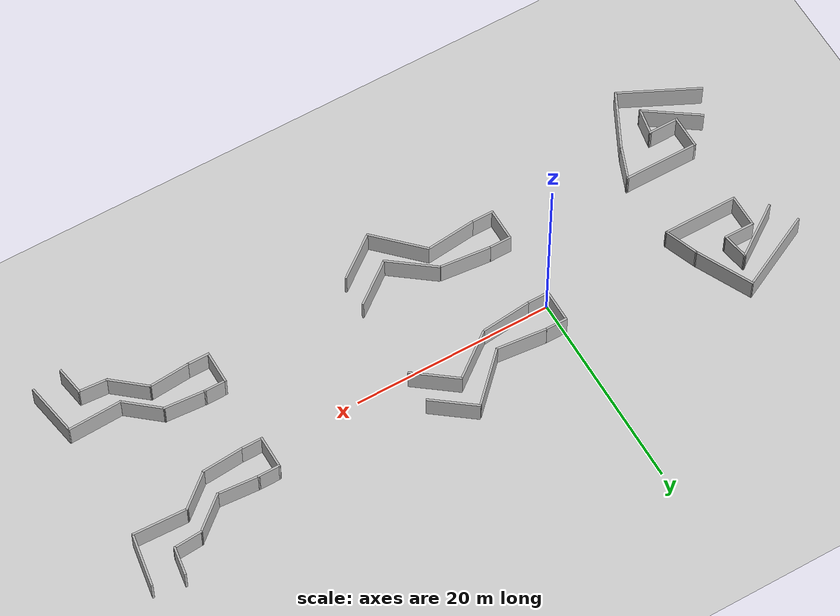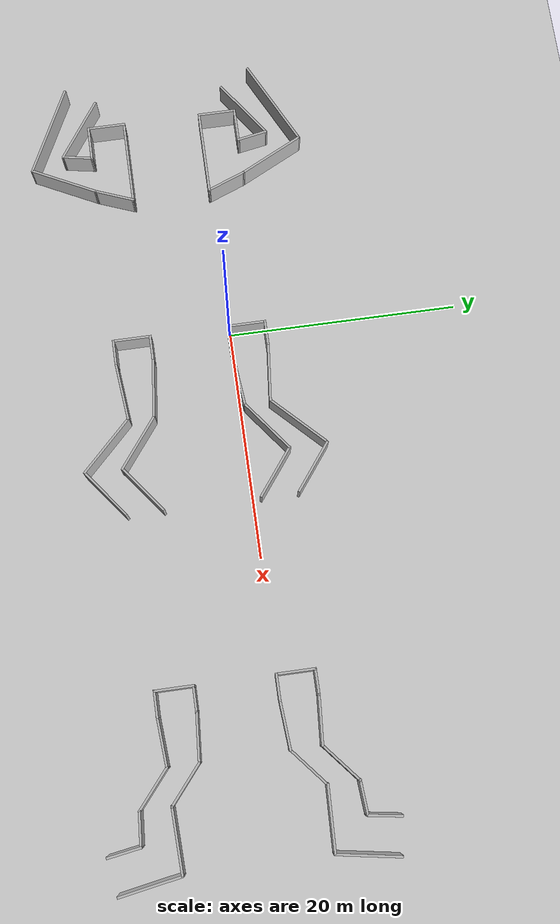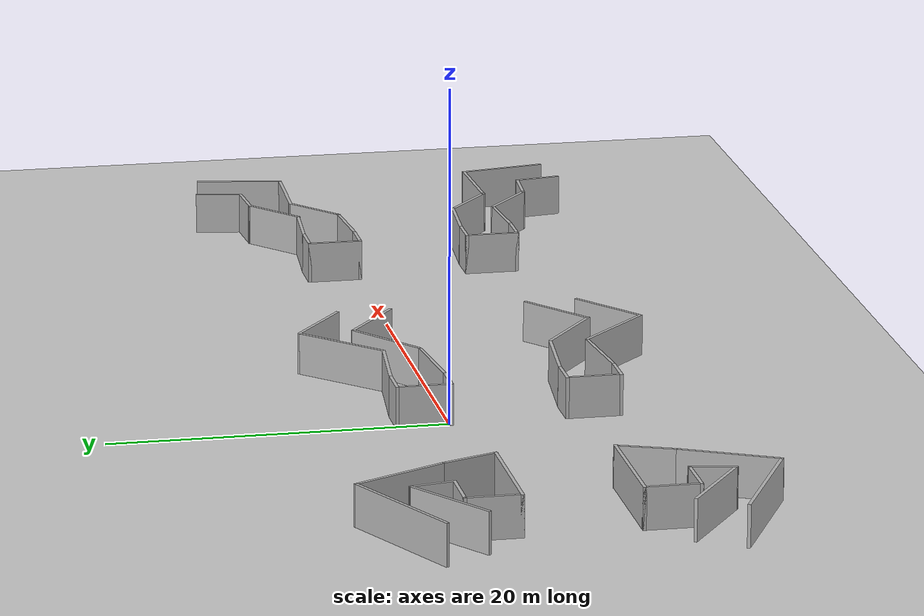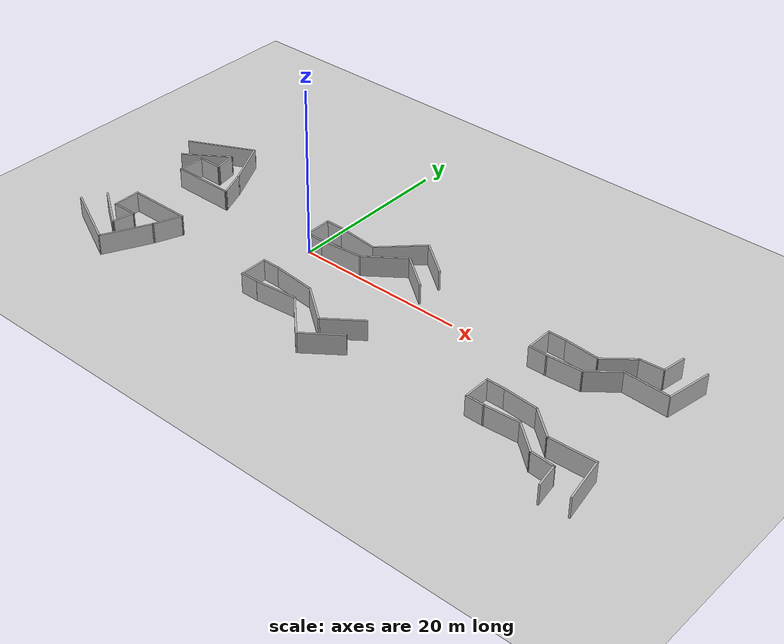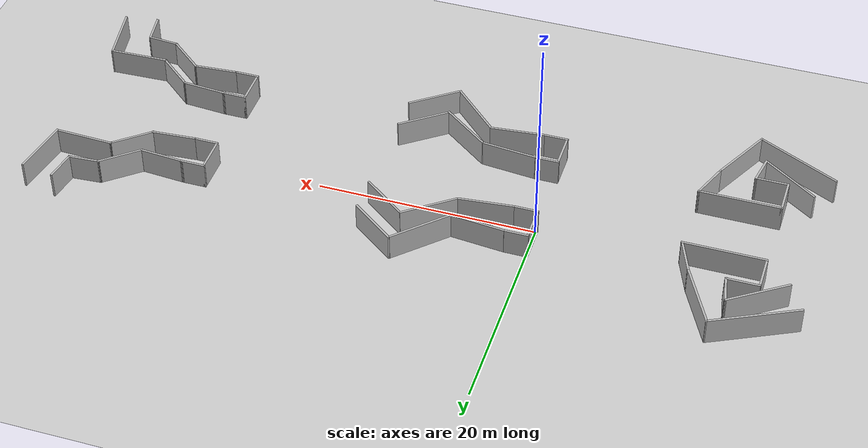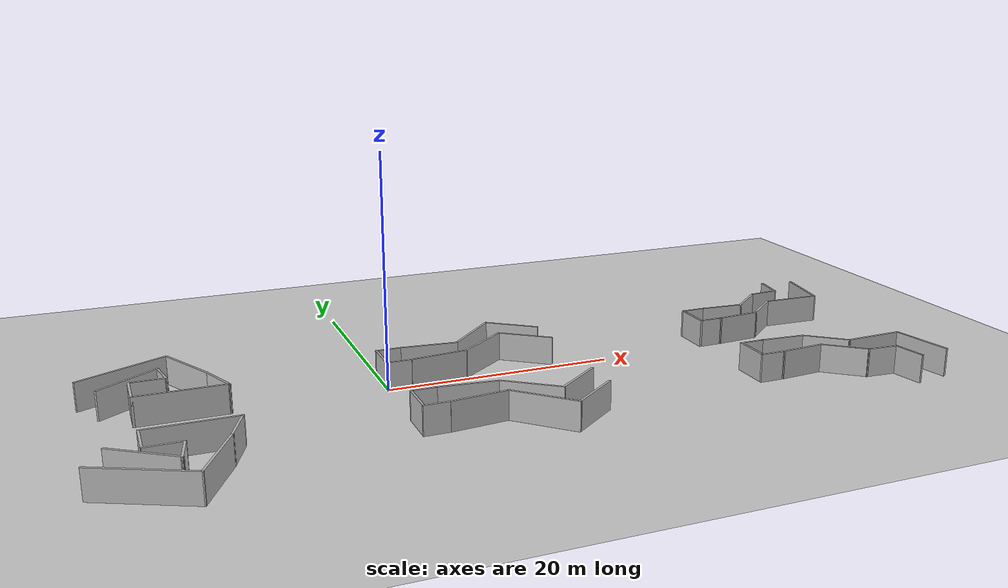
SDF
<?xml version="1.0" ?>
<sdf version="1.4">
	<world name="feedback_experiment_world_0">
		<scene>
			<sky/>
		</scene>
		<include>
			<uri>model://ground_plane</uri>
		</include>
		<include>
			<uri>model://sun</uri>
		</include>
		<model name='World_0'>
			<link name='StartArea_Wall_1'>
				<collision name='StartArea_Wall_1_Collision'>
					<geometry>
						<box>
							<size>2.2 0.2 2.5</size>
						</box>
					</geometry>
					<pose>0 0 1.25 0 0 0</pose>
				</collision>
				<visual name='StartArea_Wall_1_Visual'>
					<pose>0 0 1.25 0 0 0</pose>
					<geometry>
						<box>
						<size>2.2 0.2 2.5</size>
						</box>
					</geometry>
					<material>
						<script>
						<uri>file://media/materials/scripts/kitchen.material</uri>
						<name>Kitchen/Wall</name>
						</script>
					</material>
				</visual>
				<velocity_decay>
					<linear>0</linear>
					<angular>0</angular>
				</velocity_decay>
				<pose>0.9 -0.1 0 0 0 0</pose>
			</link>
			<link name='StartArea_Wall_2'>
				<collision name='StartArea_Wall_2_Collision'>
					<geometry>
						<box>
							<size>2.2 0.2 2.5</size>
						</box>
					</geometry>
					<pose>0 0 1.25 0 0 0</pose>
				</collision>
				<visual name='StartArea_Wall_2_Visual'>
					<pose>0 0 1.25 0 0 0</pose>
					<geometry>
						<box>
							<size>2.2 0.2 2.5</size>
						</box>
					</geometry>
					<material>
						<script>
							<uri>file://media/materials/scripts/kitchen.material</uri>
							<name>Kitchen/Wall</name>
						</script>
					</material>
				</visual>
				<velocity_decay>
					<linear>0</linear>
					<angular>0</angular>
				</velocity_decay>
				<pose>0.9 3.1 0 0 0 0</pose>
			</link>
			<link name='StartArea_Wall_3'>
				<collision name='StartArea_Wall_3_Collision'>
					<geometry>
						<box>
							<size>3 0.2 2.5</size>
						</box>
					</geometry>
					<pose>0 0 1.25 0 0 0</pose>
				</collision>
				<visual name='StartArea_Wall_3_Visual'>
					<pose>0 0 1.25 0 0 0</pose>
					<geometry>
						<box>
							<size>3 0.2 2.5</size>
						</box>
					</geometry>
					<material>
					<script>
						<uri>file://media/materials/scripts/kitchen.material</uri>
						<name>Kitchen/Wall</name>
					</script>
					</material>
				</visual>
				<velocity_decay>
					<linear>0</linear>
					<angular>0</angular>
				</velocity_decay>
				<pose>-0.1 1.5 0 0 0 -1.5708</pose>
			</link>
			<link name='Wall_1'>
				<collision name='Wall_1_Collision'>
					<geometry>
						<box>
							<size>5.025 0.2 2.5</size>
						</box>
					</geometry>
					<pose>0 0 1.25 0 0 0</pose>
				</collision>
				<visual name='Wall_1_Visual'>
					<pose>0 0 1.25 0 0 0</pose>
					<geometry>
						<box>
							<size>5.025 0.2 2.5</size>
						</box>
					</geometry>
					<material>
						<script>
							<uri>file://media/materials/scripts/kitchen.material</uri>
							<name>Kitchen/Wall</name>
						</script>
					</material>
				</visual>
				<velocity_decay>
					<linear>0</linear>
					<angular>0</angular>
				</velocity_decay>
				<pose>4.5 0.15 0 0 0 0.099668652</pose>
			</link>
			<link name='Wall_2'>
				<collision name='Wall_2_Collision'>
					<geometry>
						<box>
							<size>5.025 0.2 2.5</size>
						</box>
					</geometry>
					<pose>0 0 1.25 0 0 0</pose>
				</collision>
				<visual name='Wall_2_Visual'>
					<pose>0 0 1.25 0 0 0</pose>
					<geometry>
						<box>
							<size>5.025 0.2 2.5</size>
						</box>
					</geometry>
					<material>
						<script>
							<uri>file://media/materials/scripts/kitchen.material</uri>
							<name>Kitchen/Wall</name>
						</script>
					</material>
				</visual>
				<velocity_decay>
					<linear>0</linear>
					<angular>0</angular>
				</velocity_decay>
				<pose>4.5 2.85 0 0 0 -0.099668652</pose>
			</link>
			<link name='Wall_3'>
				<collision name='Wall_3_Collision'>
					<geometry>
						<box>
							<size>5.3399 0.2 2.5</size>
						</box>
					</geometry>
					<pose>0 0 1.25 0 0 0</pose>
				</collision>
				<visual name='Wall_3_Visual'>
					<pose>0 0 1.25 0 0 0</pose>
					<geometry>
						<box>
							<size>5.3399 0.2 2.5</size>
						</box>
					</geometry>
					<material>
					<script>
						<uri>file://media/materials/scripts/kitchen.material</uri>
						<name>Kitchen/Wall</name>
					</script>
					</material>
				</visual>
				<velocity_decay>
					<linear>0</linear>
					<angular>0</angular>
				</velocity_decay>
				<pose>9.15 2.04 0 0 0 0.652589</pose>
			</link>
			<link name='Wall_4'>
				<collision name='Wall_4_Collision'>
					<geometry>
						<box>
							<size>6 0.2 2.5</size>
						</box>
					</geometry>
					<pose>0 0 1.25 0 0 0</pose>
				</collision>
				<visual name='Wall_4_Visual'>
					<pose>0 0 1.25 0 0 0</pose>
					<geometry>
						<box>
							<size>6 0.2 2.5</size>
						</box>
					</geometry>
					<material>
					<script>
						<uri>file://media/materials/scripts/kitchen.material</uri>
						<name>Kitchen/Wall</name>
					</script>
					</material>
				</visual>
				<velocity_decay>
					<linear>0</linear>
					<angular>0</angular>
				</velocity_decay>
				<pose>9.05 4.7213 0 0 0 0.785398</pose>
			</link>
			<link name='Wall_5'>
				<collision name='Wall_5_Collision'>
					<geometry>
						<box>
							<size>5 0.2 2.5</size>
						</box>
					</geometry>
					<pose>0 0 1.25 0 0 0</pose>
				</collision>
				<visual name='Wall_5_Visual'>
					<pose>0 0 1.25 0 0 0</pose>
					<geometry>
						<box>
							<size>5 0.2 2.5</size>
						</box>
					</geometry>
					<material>
					<script>
						<uri>file://media/materials/scripts/kitchen.material</uri>
						<name>Kitchen/Wall</name>
					</script>
					</material>
				</visual>
				<velocity_decay>
					<linear>0</linear>
					<angular>0</angular>
				</velocity_decay>
				<pose>13.1577 2.17264 0 0 0 -0.65138</pose>
			</link>
			<link name='Wall_6'>
				<collision name='Wall_6_Collision'>
					<geometry>
						<box>
							<size>5 0.2 2.5</size>
						</box>
					</geometry>
					<pose>0 0 1.25 0 0 0</pose>
				</collision>
				<visual name='Wall_6_Visual'>
					<pose>0 0 1.25 0 0 0</pose>
					<geometry>
						<box>
							<size>5 0.2 2.5</size>
						</box>
					</geometry>
					<material>
					<script>
						<uri>file://media/materials/scripts/kitchen.material</uri>
						<name>Kitchen/Wall</name>
					</script>
					</material>
				</visual>
				<velocity_decay>
					<linear>0</linear>
					<angular>0</angular>
				</velocity_decay>
				<pose>13.1477 5.4 0 0 0 -0.65138</pose>
			</link>
			<static>1</static>
		</model>
		<model name='World_1'>
			<link name='StartArea_Wall_1'>
				<collision name='StartArea_Wall_1_Collision'>
					<geometry>
						<box>
							<size>2.2 0.2 2.5</size>
						</box>
					</geometry>
					<pose>0 0 1.25 0 0 0</pose>
				</collision>
				<visual name='StartArea_Wall_1_Visual'>
					<pose>0 0 1.25 0 0 0</pose>
					<geometry>
						<box>
						<size>2.2 0.2 2.5</size>
						</box>
					</geometry>
					<material>
						<script>
							<uri>file://media/materials/scripts/kitchen.material</uri>
							<name>Kitchen/Wall</name>
						</script>
					</material>
				</visual>
				<velocity_decay>
					<linear>0</linear>
					<angular>0</angular>
				</velocity_decay>
				<pose>0.9 -0.1 0 0 0 0</pose>
			</link>
			<link name='StartArea_Wall_2'>
				<collision name='StartArea_Wall_2_Collision'>
					<geometry>
						<box>
							<size>2.2 0.2 2.5</size>
						</box>
					</geometry>
					<pose>0 0 1.25 0 0 0</pose>
				</collision>
				<visual name='StartArea_Wall_2_Visual'>
					<pose>0 0 1.25 0 0 0</pose>
					<geometry>
						<box>
							<size>2.2 0.2 2.5</size>
						</box>
					</geometry>
					<material>
						<script>
							<uri>file://media/materials/scripts/kitchen.material</uri>
							<name>Kitchen/Wall</name>
						</script>
					</material>
				</visual>
				<velocity_decay>
					<linear>0</linear>
					<angular>0</angular>
				</velocity_decay>
				<pose>0.9 3.1 0 0 0 0</pose>
			</link>
			<link name='StartArea_Wall_3'>
				<collision name='StartArea_Wall_3_Collision'>
					<geometry>
						<box>
							<size>3 0.2 2.5</size>
						</box>
					</geometry>
					<pose>0 0 1.25 0 0 0</pose>
				</collision>
				<visual name='StartArea_Wall_3_Visual'>
					<pose>0 0 1.25 0 0 0</pose>
					<geometry>
						<box>
							<size>3 0.2 2.5</size>
						</box>
					</geometry>
					<material>
					<script>
						<uri>file://media/materials/scripts/kitchen.material</uri>
						<name>Kitchen/Wall</name>
					</script>
					</material>
				</visual>
				<velocity_decay>
					<linear>0</linear>
					<angular>0</angular>
				</velocity_decay>
				<pose>-0.1 1.5 0 0 0 -1.5708</pose>
			</link>
			<link name='Wall_1'>
				<collision name='Wall_1_Collision'>
					<geometry>
						<box>
							<size>5.025 0.2 2.5</size>
						</box>
					</geometry>
					<pose>0 0 1.25 0 0 0</pose>
				</collision>
				<visual name='Wall_1_Visual'>
					<pose>0 0 1.25 0 0 0</pose>
					<geometry>
						<box>
							<size>5.025 0.2 2.5</size>
						</box>
					</geometry>
					<material>
						<script>
							<uri>file://media/materials/scripts/kitchen.material</uri>
							<name>Kitchen/Wall</name>
						</script>
					</material>
				</visual>
				<velocity_decay>
					<linear>0</linear>
					<angular>0</angular>
				</velocity_decay>
				<pose>4.5 0.15 0 0 0 0.099668652</pose>
			</link>
			<link name='Wall_2'>
				<collision name='Wall_2_Collision'>
					<geometry>
						<box>
							<size>5.025 0.2 2.5</size>
						</box>
					</geometry>
					<pose>0 0 1.25 0 0 0</pose>
				</collision>
				<visual name='Wall_2_Visual'>
					<pose>0 0 1.25 0 0 0</pose>
					<geometry>
						<box>
							<size>5.025 0.2 2.5</size>
						</box>
					</geometry>
					<material>
						<script>
							<uri>file://media/materials/scripts/kitchen.material</uri>
							<name>Kitchen/Wall</name>
						</script>
					</material>
				</visual>
				<velocity_decay>
					<linear>0</linear>
					<angular>0</angular>
				</velocity_decay>
				<pose>4.5 2.85 0 0 0 -0.099668652</pose>
			</link>
			<link name='Wall_3'>
				<collision name='Wall_3_Collision'>
					<geometry>
						<box>
							<size>6 0.2 2.5</size>
						</box>
					</geometry>
					<pose>0 0 1.25 0 0 0</pose>
				</collision>
				<visual name='Wall_3_Visual'>
					<pose>0 0 1.25 0 0 0</pose>
					<geometry>
						<box>
							<size>6 0.2 2.5</size>
						</box>
					</geometry>
					<material>
					<script>
						<uri>file://media/materials/scripts/kitchen.material</uri>
						<name>Kitchen/Wall</name>
					</script>
					</material>
				</visual>
				<velocity_decay>
					<linear>0</linear>
					<angular>0</angular>
				</velocity_decay>
				<pose>9.03 -1.705 0 0 0 -0.785398</pose>
			</link>
			<link name='Wall_4'>
				<collision name='Wall_4_Collision'>
					<geometry>
						<box>
							<size>5.3399 0.2 2.5</size>
						</box>
					</geometry>
					<pose>0 0 1.25 0 0 0</pose>
				</collision>
				<visual name='Wall_4_Visual'>
					<pose>0 0 1.25 0 0 0</pose>
					<geometry>
						<box>
							<size>5.3399 0.2 2.5</size>
						</box>
					</geometry>
					<material>
					<script>
						<uri>file://media/materials/scripts/kitchen.material</uri>
						<name>Kitchen/Wall</name>
					</script>
					</material>
				</visual>
				<velocity_decay>
					<linear>0</linear>
					<angular>0</angular>
				</velocity_decay>
				<pose>9.15 0.98 0 0 0 -0.652589</pose>
			</link>
			<link name='Wall_5'>
				<collision name='Wall_5_Collision'>
					<geometry>
						<box>
							<size>5 0.2 2.5</size>
						</box>
					</geometry>
					<pose>0 0 1.25 0 0 0</pose>
				</collision>
				<visual name='Wall_5_Visual'>
					<pose>0 0 1.25 0 0 0</pose>
					<geometry>
						<box>
							<size>5 0.2 2.5</size>
						</box>
					</geometry>
					<material>
					<script>
						<uri>file://media/materials/scripts/kitchen.material</uri>
						<name>Kitchen/Wall</name>
					</script>
					</material>
				</visual>
				<velocity_decay>
					<linear>0</linear>
					<angular>0</angular>
				</velocity_decay>
				<pose>13.1477 -2.20264 0 0 0 0.65138</pose>
			</link>
			<link name='Wall_6'>
				<collision name='Wall_6_Collision'>
					<geometry>
						<box>
							<size>5 0.2 2.5</size>
						</box>
					</geometry>
					<pose>0 0 1.25 0 0 0</pose>
				</collision>
				<visual name='Wall_6_Visual'>
					<pose>0 0 1.25 0 0 0</pose>
					<geometry>
						<box>
							<size>5 0.2 2.5</size>
						</box>
					</geometry>
					<material>
					<script>
						<uri>file://media/materials/scripts/kitchen.material</uri>
						<name>Kitchen/Wall</name>
					</script>
					</material>
				</visual>
				<velocity_decay>
					<linear>0</linear>
					<angular>0</angular>
				</velocity_decay>
				<pose>13.1577 0.95 0 0 0 0.65138</pose>
			</link>
			<static>1</static>
			<pose>0 -10 0 0 0 0</pose>
		</model>
		<model name='World_2'>
			<link name='Wall_1'>
				<collision name='Wall_1_Collision'>
					<geometry>
						<box>
							<size>3.63294 0.2 2.5</size>
						</box>
					</geometry>
					<pose>0 0 1.25 0 -0 0</pose>
				</collision>
				<visual name='Wall_1_Visual'>
					<pose>0 0 1.25 0 -0 0</pose>
					<geometry>
						<box>
							<size>3.63294 0.2 2.5</size>
						</box>
					</geometry>
					<material>
						<script>
							<uri>file://media/materials/scripts/kitchen.material</uri>
							<name>Kitchen/Wall</name>
						</script>
					</material>
				</visual>
				<velocity_decay>
					<linear>0</linear>
					<angular>0</angular>
				</velocity_decay>
				<pose>6.4995 1.5 0 0 -0 1.94129</pose>
			</link>
			<link name='Wall_2'>
				<collision name='Wall_2_Collision'>
					<geometry>
						<box>
							<size>2.7603 0.2 2.5</size>
						</box>
					</geometry>
					<pose>0 0 1.25 0 -0 0</pose>
				</collision>
				<visual name='Wall_2_Visual'>
					<pose>0 0 1.25 0 -0 0</pose>
					<geometry>
						<box>
							<size>2.7603 0.2 2.5</size>
						</box>
					</geometry>
					<material>
						<script>
							<uri>file://media/materials/scripts/kitchen.material</uri>
							<name>Kitchen/Wall</name>
						</script>
					</material>
				</visual>
				<velocity_decay>
					<linear>0</linear>
					<angular>0</angular>
				</velocity_decay>
				<pose>2.449 4.3595 0 0 -0 1.75065</pose>
			</link>
			<link name='Wall_3'>
				<collision name='Wall_3_Collision'>
					<geometry>
						<box>
							<size>6.2034 0.2 2.5</size>
						</box>
					</geometry>
					<pose>0 0 1.25 0 -0 0</pose>
				</collision>
				<visual name='Wall_3_Visual'>
					<pose>0 0 1.25 0 -0 0</pose>
					<geometry>
						<box>
							<size>6.2034 0.2 2.5</size>
						</box>
					</geometry>
					<material>
						<script>
							<uri>file://media/materials/scripts/kitchen.material</uri>
							<name>Kitchen/Wall</name>
						</script>
					</material>
				</visual>
				<velocity_decay>
					<linear>0</linear>
					<angular>0</angular>
				</velocity_decay>
				<pose>4.533 5.7835 0 0 -0 2.03541</pose>
			</link>
			<link name='Wall_4'>
				<collision name='Wall_4_Collision'>
					<geometry>
						<box>
							<size>8.34692 0.2 2.5</size>
						</box>
					</geometry>
					<pose>0 0 1.25 0 -0 0</pose>
				</collision>
				<visual name='Wall_4_Visual'>
					<pose>0 0 1.25 0 -0 0</pose>
					<geometry>
						<box>
							<size>8.34692 0.2 2.5</size>
						</box>
					</geometry>
					<material>
						<script>
							<uri>file://media/materials/scripts/kitchen.material</uri>
							<name>Kitchen/Wall</name>
						</script>
					</material>
				</visual>
				<velocity_decay>
					<linear>0</linear>
					<angular>0</angular>
				</velocity_decay>
				<pose>-0.46 6.6545 0 0 0 -2.68047</pose>
			</link>
			<link name='Wall_5'>
				<collision name='Wall_5_Collision'>
					<geometry>
						<box>
							<size>6.09069 0.2 2.5</size>
						</box>
					</geometry>
					<pose>0 0 1.25 0 -0 0</pose>
				</collision>
				<visual name='Wall_5_Visual'>
					<pose>0 0 1.25 0 -0 0</pose>
					<geometry>
						<box>
							<size>6.09069 0.2 2.5</size>
						</box>
					</geometry>
					<material>
						<script>
							<uri>file://media/materials/scripts/kitchen.material</uri>
							<name>Kitchen/Wall</name>
						</script>
					</material>
				</visual>
				<velocity_decay>
					<linear>0</linear>
					<angular>0</angular>
				</velocity_decay>
				<pose>-0.194 3.9315 0 0 0 -2.53151</pose>
			</link>
			<link name='Wall_6'>
				<collision name='Wall_6_Collision'>
					<geometry>
						<box>
							<size>3.078 0.2 2.5</size>
						</box>
					</geometry>
					<pose>0 0 1.25 0 -0 0</pose>
				</collision>
				<visual name='Wall_6_Visual'>
					<pose>0 0 1.25 0 -0 0</pose>
					<geometry>
						<box>
							<size>3.078 0.2 2.5</size>
						</box>
					</geometry>
					<material>
						<script>
							<uri>file://media/materials/scripts/kitchen.material</uri>
							<name>Kitchen/Wall</name>
						</script>
					</material>
				</visual>
				<velocity_decay>
					<linear>0</linear>
					<angular>0</angular>
				</velocity_decay>
				<pose>1.239 3.1 0 0 -0 3.14159</pose>
			</link>
			<link name='Wall_7'>
				<collision name='Wall_7_Collision'>
					<geometry>
						<box>
							<size>3.4 0.2 2.5</size>
						</box>
					</geometry>
					<pose>0 0 1.25 0 -0 0</pose>
				</collision>
				<visual name='Wall_7_Visual'>
					<pose>0 0 1.25 0 -0 0</pose>
					<geometry>
						<box>
							<size>3.4 0.2 2.5</size>
						</box>
					</geometry>
					<material>
						<script>
							<uri>file://media/materials/scripts/kitchen.material</uri>
							<name>Kitchen/Wall</name>
						</script>
					</material>
				</visual>
				<velocity_decay>
					<linear>0</linear>
					<angular>0</angular>
				</velocity_decay>
				<pose>-0.2 1.5 0 0 0 -1.5708</pose>
			</link>
			<link name='Wall_8'>
				<collision name='Wall_8_Collision'>
					<geometry>
						<box>
							<size>7.521 0.2 2.5</size>
						</box>
					</geometry>
					<pose>0 0 1.25 0 -0 0</pose>
				</collision>
				<visual name='Wall_8_Visual'>
					<pose>0 0 1.25 0 -0 0</pose>
					<geometry>
						<box>
							<size>7.521 0.2 2.5</size>
						</box>
					</geometry>
					<material>
						<script>
							<uri>file://media/materials/scripts/kitchen.material</uri>
							<name>Kitchen/Wall</name>
						</script>
					</material>
				</visual>
				<velocity_decay>
					<linear>0</linear>
					<angular>0</angular>
				</velocity_decay>
				<pose>3.4605 -0.1 0 0 -0 0</pose>
			</link>
			<pose>-20 0 0 0 0 0</pose>
			<static>1</static>
		</model>
		<model name='World_3'>
			<link name='Wall_1'>
				<collision name='Wall_1_Collision'>
					<geometry>
						<box>
							<size>3.63294 0.2 2.5</size>
						</box>
					</geometry>
					<pose>0 0 1.25 0 -0 0</pose>
				</collision>
				<visual name='Wall_1_Visual'>
					<pose>0 0 1.25 0 -0 0</pose>
					<geometry>
						<box>
							<size>3.63294 0.2 2.5</size>
						</box>
					</geometry>
					<material>
						<script>
							<uri>file://media/materials/scripts/kitchen.material</uri>
							<name>Kitchen/Wall</name>
						</script>
					</material>
				</visual>
				<velocity_decay>
					<linear>0</linear>
					<angular>0</angular>
				</velocity_decay>
				<pose>6.4995 1.5 0 0 0 -1.94129</pose>
			</link>
			<link name='Wall_2'>
				<collision name='Wall_2_Collision'>
					<geometry>
						<box>
							<size>6.09069 0.2 2.5</size>
						</box>
					</geometry>
					<pose>0 0 1.25 0 -0 0</pose>
				</collision>
				<visual name='Wall_2_Visual'>
					<pose>0 0 1.25 0 -0 0</pose>
					<geometry>
						<box>
							<size>6.09069 0.2 2.5</size>
						</box>
					</geometry>
					<material>
						<script>
							<uri>file://media/materials/scripts/kitchen.material</uri>
							<name>Kitchen/Wall</name>
						</script>
					</material>
				</visual>
				<velocity_decay>
					<linear>0</linear>
					<angular>0</angular>
				</velocity_decay>
				<pose>-0.194 -0.9315 0 0 -0 2.53151</pose>
			</link>
			<link name='Wall_3'>
				<collision name='Wall_3_Collision'>
					<geometry>
						<box>
							<size>2.7603 0.2 2.5</size>
						</box>
					</geometry>
					<pose>0 0 1.25 0 -0 0</pose>
				</collision>
				<visual name='Wall_3_Visual'>
					<pose>0 0 1.25 0 -0 0</pose>
					<geometry>
						<box>
							<size>2.7603 0.2 2.5</size>
						</box>
					</geometry>
					<material>
						<script>
							<uri>file://media/materials/scripts/kitchen.material</uri>
							<name>Kitchen/Wall</name>
						</script>
					</material>
				</visual>
				<velocity_decay>
					<linear>0</linear>
					<angular>0</angular>
				</velocity_decay>
				<pose>2.449 -1.3595 0 0 0 -1.75065</pose>
			</link>
			<link name='Wall_4'>
				<collision name='Wall_4_Collision'>
					<geometry>
						<box>
							<size>6.2034 0.2 2.5</size>
						</box>
					</geometry>
					<pose>0 0 1.25 0 -0 0</pose>
				</collision>
				<visual name='Wall_4_Visual'>
					<pose>0 0 1.25 0 -0 0</pose>
					<geometry>
						<box>
							<size>6.2034 0.2 2.5</size>
						</box>
					</geometry>
					<material>
						<script>
							<uri>file://media/materials/scripts/kitchen.material</uri>
							<name>Kitchen/Wall</name>
						</script>
					</material>
				</visual>
				<velocity_decay>
					<linear>0</linear>
					<angular>0</angular>
				</velocity_decay>
				<pose>4.533 -2.7835 0 0 0 -2.03541</pose>
			</link>
			<link name='Wall_5'>
				<collision name='Wall_5_Collision'>
					<geometry>
						<box>
							<size>8.34692 0.2 2.5</size>
						</box>
					</geometry>
					<pose>0 0 1.25 0 -0 0</pose>
				</collision>
				<visual name='Wall_5_Visual'>
					<pose>0 0 1.25 0 -0 0</pose>
					<geometry>
						<box>
							<size>8.34692 0.2 2.5</size>
						</box>
					</geometry>
					<material>
						<script>
							<uri>file://media/materials/scripts/kitchen.material</uri>
							<name>Kitchen/Wall</name>
						</script>
					</material>
				</visual>
				<velocity_decay>
					<linear>0</linear>
					<angular>0</angular>
				</velocity_decay>
				<pose>-0.46 -3.6545 0 0 -0 2.68047</pose>
			</link>
			<link name='Wall_6'>
				<collision name='Wall_6_Collision'>
					<geometry>
						<box>
							<size>3.4 0.2 2.5</size>
						</box>
					</geometry>
					<pose>0 0 1.25 0 -0 0</pose>
				</collision>
				<visual name='Wall_6_Visual'>
					<pose>0 0 1.25 0 -0 0</pose>
					<geometry>
						<box>
							<size>3.4 0.2 2.5</size>
						</box>
					</geometry>
					<material>
						<script>
							<uri>file://media/materials/scripts/kitchen.material</uri>
							<name>Kitchen/Wall</name>
						</script>
					</material>
				</visual>
				<velocity_decay>
					<linear>0</linear>
					<angular>0</angular>
				</velocity_decay>
				<pose>-0.2 1.5 0 0 -0 1.5708</pose>
			</link>
			<link name='Wall_7'>
				<collision name='Wall_7_Collision'>
					<geometry>
						<box>
							<size>7.521 0.2 2.5</size>
						</box>
					</geometry>
					<pose>0 0 1.25 0 -0 0</pose>
				</collision>
				<visual name='Wall_7_Visual'>
					<pose>0 0 1.25 0 -0 0</pose>
					<geometry>
						<box>
							<size>7.521 0.2 2.5</size>
						</box>
					</geometry>
					<material>
						<script>
							<uri>file://media/materials/scripts/kitchen.material</uri>
							<name>Kitchen/Wall</name>
						</script>
					</material>
				</visual>
				<velocity_decay>
					<linear>0</linear>
					<angular>0</angular>
				</velocity_decay>
				<pose>3.4605 3.1 0 0 -0 0</pose>
			</link>
			<link name='Wall_8'>
				<collision name='Wall_8_Collision'>
					<geometry>
						<box>
							<size>3.078 0.2 2.5</size>
						</box>
					</geometry>
					<pose>0 0 1.25 0 -0 0</pose>
				</collision>
				<visual name='Wall_8_Visual'>
					<pose>0 0 1.25 0 -0 0</pose>
					<geometry>
						<box>
							<size>3.078 0.2 2.5</size>
						</box>
					</geometry>
					<material>
						<script>
							<uri>file://media/materials/scripts/kitchen.material</uri>
							<name>Kitchen/Wall</name>
						</script>
					</material>
				</visual>
				<velocity_decay>
					<linear>0</linear>
					<angular>0</angular>
				</velocity_decay>
				<pose>1.239 -0.1 0 0 -0 0</pose>
			</link>
			<pose>-20 -10 0 0 0 0</pose>
			<static>1</static>
		</model>
		<model name='world_4'>
			<link name='Wall_1'>
				<collision name='Wall_1_Collision'>
					<geometry>
						<box>
							<size>2.3 0.2 2.5</size>
						</box>
					</geometry>
					<pose>0 0 1.25 0 -0 0</pose>
				</collision>
				<visual name='Wall_1_Visual'>
					<pose>0 0 1.25 0 -0 0</pose>
					<geometry>
						<box>
							<size>2.3 0.2 2.5</size>
						</box>
					</geometry>
					<material>
						<script>
							<uri>file://media/materials/scripts/kitchen.material</uri>
							<name>Kitchen/Wall</name>
						</script>
					</material>
				</visual>
				<velocity_decay>
					<linear>0</linear>
					<angular>0</angular>
				</velocity_decay>
				<pose>0.85 3.1 0 0 -0 3.14159</pose>
			</link>
			<link name='Wall_2'>
				<collision name='Wall_2_Collision'>
					<geometry>
						<box>
							<size>3.4 0.2 2.5</size>
						</box>
					</geometry>
					<pose>0 0 1.25 0 -0 0</pose>
				</collision>
				<visual name='Wall_2_Visual'>
					<pose>0 0 1.25 0 -0 0</pose>
					<geometry>
						<box>
							<size>3.4 0.2 2.5</size>
						</box>
					</geometry>
					<material>
						<script>
							<uri>file://media/materials/scripts/kitchen.material</uri>
							<name>Kitchen/Wall</name>
						</script>
					</material>
				</visual>
				<velocity_decay>
					<linear>0</linear>
					<angular>0</angular>
				</velocity_decay>
				<pose>-0.2 1.5 0 0 0 -1.5708</pose>
			</link>
			<link name='Wall_3'>
				<collision name='Wall_3_Collision'>
					<geometry>
						<box>
							<size>2.3 0.2 2.5</size>
						</box>
					</geometry>
					<pose>0 0 1.25 0 -0 0</pose>
				</collision>
				<visual name='Wall_3_Visual'>
					<pose>0 0 1.25 0 -0 0</pose>
					<geometry>
						<box>
							<size>2.3 0.2 2.5</size>
						</box>
					</geometry>
					<material>
						<script>
							<uri>file://media/materials/scripts/kitchen.material</uri>
							<name>Kitchen/Wall</name>
						</script>
					</material>
				</visual>
				<velocity_decay>
					<linear>0</linear>
					<angular>0</angular>
				</velocity_decay>
				<pose>0.85 -0.1 0 0 -0 0</pose>
			</link>
			<link name='Wall_4'>
				<collision name='Wall_4_Collision'>
					<geometry>
						<box>
							<size>4.21086 0.2 2.5</size>
						</box>
					</geometry>
					<pose>0 0 1.25 0 -0 0</pose>
				</collision>
				<visual name='Wall_4_Visual'>
					<pose>0 0 1.25 0 -0 0</pose>
					<geometry>
						<box>
							<size>4.21086 0.2 2.5</size>
						</box>
					</geometry>
					<material>
						<script>
							<uri>file://media/materials/scripts/kitchen.material</uri>
							<name>Kitchen/Wall</name>
						</script>
					</material>
				</visual>
				<velocity_decay>
					<linear>0</linear>
					<angular>0</angular>
				</velocity_decay>
				<pose>3.9 2.9525 0 0 0 -0.073617</pose>
			</link>
			<link name='Wall_5'>
				<collision name='Wall_5_Collision'>
					<geometry>
						<box>
							<size>4.21079 0.2 2.5</size>
						</box>
					</geometry>
					<pose>0 0 1.25 0 -0 0</pose>
				</collision>
				<visual name='Wall_5_Visual'>
					<pose>0 0 1.25 0 -0 0</pose>
					<geometry>
						<box>
							<size>4.21079 0.2 2.5</size>
						</box>
					</geometry>
					<material>
						<script>
							<uri>file://media/materials/scripts/kitchen.material</uri>
							<name>Kitchen/Wall</name>
						</script>
					</material>
				</visual>
				<velocity_decay>
					<linear>0</linear>
					<angular>0</angular>
				</velocity_decay>
				<pose>3.9 0.047 0 0 -0 0.073368</pose>
			</link>
			<link name='Wall_6'>
				<collision name='Wall_6_Collision'>
					<geometry>
						<box>
							<size>4.19977 0.2 2.5</size>
						</box>
					</geometry>
					<pose>0 0 1.25 0 -0 0</pose>
				</collision>
				<visual name='Wall_6_Visual'>
					<pose>0 0 1.25 0 -0 0</pose>
					<geometry>
						<box>
							<size>4.19977 0.2 2.5</size>
						</box>
					</geometry>
					<material>
						<script>
							<uri>file://media/materials/scripts/kitchen.material</uri>
							<name>Kitchen/Wall</name>
						</script>
					</material>
				</visual>
				<velocity_decay>
					<linear>0</linear>
					<angular>0</angular>
				</velocity_decay>
				<pose>7.432 4.0905 0 0 -0 0.698131</pose>
			</link>
			<link name='Wall_7'>
				<collision name='Wall_7_Collision'>
					<geometry>
						<box>
							<size>4.19977 0.2 2.5</size>
						</box>
					</geometry>
					<pose>0 0 1.25 0 -0 0</pose>
				</collision>
				<visual name='Wall_7_Visual'>
					<pose>0 0 1.25 0 -0 0</pose>
					<geometry>
						<box>
							<size>4.19977 0.2 2.5</size>
						</box>
					</geometry>
					<material>
						<script>
							<uri>file://media/materials/scripts/kitchen.material</uri>
							<name>Kitchen/Wall</name>
						</script>
					</material>
				</visual>
				<velocity_decay>
					<linear>0</linear>
					<angular>0</angular>
				</velocity_decay>
				<pose>7.432 1.4795 0 0 -0 0.698131</pose>
			</link>
			<link name='Wall_8'>
				<collision name='Wall_8_Collision'>
					<geometry>
						<box>
							<size>2.94793 0.2 2.5</size>
						</box>
					</geometry>
					<pose>0 0 1.25 0 -0 0</pose>
				</collision>
				<visual name='Wall_8_Visual'>
					<pose>0 0 1.25 0 -0 0</pose>
					<geometry>
						<box>
							<size>2.94793 0.2 2.5</size>
						</box>
					</geometry>
					<material>
						<script>
							<uri>file://media/materials/scripts/kitchen.material</uri>
							<name>Kitchen/Wall</name>
						</script>
					</material>
				</visual>
				<velocity_decay>
					<linear>0</linear>
					<angular>0</angular>
				</velocity_decay>
				<pose>10.3345 5.4735 0 0 -0 0.071022</pose>
			</link>
			<link name='Wall_9'>
				<collision name='Wall_9_Collision'>
					<geometry>
						<box>
							<size>5.46258 0.2 2.5</size>
						</box>
					</geometry>
					<pose>0 0 1.25 0 -0 0</pose>
				</collision>
				<visual name='Wall_9_Visual'>
					<pose>0 0 1.25 0 -0 0</pose>
					<geometry>
						<box>
							<size>5.46258 0.2 2.5</size>
						</box>
					</geometry>
					<material>
						<script>
							<uri>file://media/materials/scripts/kitchen.material</uri>
							<name>Kitchen/Wall</name>
						</script>
					</material>
				</visual>
				<velocity_decay>
					<linear>0</linear>
					<angular>0</angular>
				</velocity_decay>
				<pose>11.5935 2.668 0 0 0 -0.036872</pose>
			</link>
			<link name='Wall_10'>
				<collision name='Wall_10_Collision'>
					<geometry>
						<box>
							<size>2.93288 0.2 2.5</size>
						</box>
					</geometry>
					<pose>0 0 1.25 0 -0 0</pose>
				</collision>
				<visual name='Wall_10_Visual'>
					<pose>0 0 1.25 0 -0 0</pose>
					<geometry>
						<box>
							<size>2.93288 0.2 2.5</size>
						</box>
					</geometry>
					<material>
						<script>
							<uri>file://media/materials/scripts/kitchen.material</uri>
							<name>Kitchen/Wall</name>
						</script>
					</material>
				</visual>
				<velocity_decay>
					<linear>0</linear>
					<angular>0</angular>
				</velocity_decay>
				<pose>11.9195 6.9205 0 0 -0 1.41317</pose>
			</link>
			<link name='Wall_11'>
				<collision name='Wall_11_Collision'>
					<geometry>
						<box>
							<size>5.45737 0.2 2.5</size>
						</box>
					</geometry>
					<pose>0 0 1.25 0 -0 0</pose>
				</collision>
				<visual name='Wall_11_Visual'>
					<pose>0 0 1.25 0 -0 0</pose>
					<geometry>
						<box>
							<size>5.45737 0.2 2.5</size>
						</box>
					</geometry>
					<material>
						<script>
							<uri>file://media/materials/scripts/kitchen.material</uri>
							<name>Kitchen/Wall</name>
						</script>
					</material>
				</visual>
				<velocity_decay>
					<linear>0</linear>
					<angular>0</angular>
				</velocity_decay>
				<pose>14.7375 5.158 0 0 -0 1.40127</pose>
			</link>
			<pose>30 0 0 0 0 0</pose>
			<static>1</static>
		</model>
		<model name='world_5'>
			<link name='Wall_1'>
				<collision name='Wall_1_Collision'>
					<geometry>
						<box>
							<size>2.3 0.2 2.5</size>
						</box>
					</geometry>
					<pose>0 0 1.25 0 -0 0</pose>
				</collision>
				<visual name='Wall_1_Visual'>
					<pose>0 0 1.25 0 -0 0</pose>
					<geometry>
						<box>
							<size>2.3 0.2 2.5</size>
						</box>
					</geometry>
					<material>
						<script>
							<uri>file://media/materials/scripts/kitchen.material</uri>
							<name>Kitchen/Wall</name>
						</script>
					</material>
				</visual>
				<velocity_decay>
					<linear>0</linear>
					<angular>0</angular>
				</velocity_decay>
				<pose>0.85 -0.1 0 0 -0 -3.14159</pose>
			</link>
			<link name='Wall_2'>
				<collision name='Wall_2_Collision'>
					<geometry>
						<box>
							<size>3.4 0.2 2.5</size>
						</box>
					</geometry>
					<pose>0 0 1.25 0 -0 0</pose>
				</collision>
				<visual name='Wall_2_Visual'>
					<pose>0 0 1.25 0 -0 0</pose>
					<geometry>
						<box>
							<size>3.4 0.2 2.5</size>
						</box>
					</geometry>
					<material>
						<script>
							<uri>file://media/materials/scripts/kitchen.material</uri>
							<name>Kitchen/Wall</name>
						</script>
					</material>
				</visual>
				<velocity_decay>
					<linear>0</linear>
					<angular>0</angular>
				</velocity_decay>
				<pose>-0.2 1.5 0 0 0 1.5708</pose>
			</link>
			<link name='Wall_3'>
				<collision name='Wall_3_Collision'>
					<geometry>
						<box>
							<size>2.3 0.2 2.5</size>
						</box>
					</geometry>
					<pose>0 0 1.25 0 -0 0</pose>
				</collision>
				<visual name='Wall_3_Visual'>
					<pose>0 0 1.25 0 -0 0</pose>
					<geometry>
						<box>
							<size>2.3 0.2 2.5</size>
						</box>
					</geometry>
					<material>
						<script>
							<uri>file://media/materials/scripts/kitchen.material</uri>
							<name>Kitchen/Wall</name>
						</script>
					</material>
				</visual>
				<velocity_decay>
					<linear>0</linear>
					<angular>0</angular>
				</velocity_decay>
				<pose>0.85 3.1 0 0 -0 0</pose>
			</link>
			<link name='Wall_4'>
				<collision name='Wall_4_Collision'>
					<geometry>
						<box>
							<size>4.21086 0.2 2.5</size>
						</box>
					</geometry>
					<pose>0 0 1.25 0 -0 0</pose>
				</collision>
				<visual name='Wall_4_Visual'>
					<pose>0 0 1.25 0 -0 0</pose>
					<geometry>
						<box>
							<size>4.21086 0.2 2.5</size>
						</box>
					</geometry>
					<material>
						<script>
							<uri>file://media/materials/scripts/kitchen.material</uri>
							<name>Kitchen/Wall</name>
						</script>
					</material>
				</visual>
				<velocity_decay>
					<linear>0</linear>
					<angular>0</angular>
				</velocity_decay>
				<pose>3.9 0.0475 0 0 0 0.073617</pose>
			</link>
			<link name='Wall_5'>
				<collision name='Wall_5_Collision'>
					<geometry>
						<box>
							<size>4.21079 0.2 2.5</size>
						</box>
					</geometry>
					<pose>0 0 1.25 0 -0 0</pose>
				</collision>
				<visual name='Wall_5_Visual'>
					<pose>0 0 1.25 0 -0 0</pose>
					<geometry>
						<box>
							<size>4.21079 0.2 2.5</size>
						</box>
					</geometry>
					<material>
						<script>
							<uri>file://media/materials/scripts/kitchen.material</uri>
							<name>Kitchen/Wall</name>
						</script>
					</material>
				</visual>
				<velocity_decay>
					<linear>0</linear>
					<angular>0</angular>
				</velocity_decay>
				<pose>3.9 2.953 0 0 -0 -0.073368</pose>
			</link>
			<link name='Wall_6'>
				<collision name='Wall_6_Collision'>
					<geometry>
						<box>
							<size>4.19977 0.2 2.5</size>
						</box>
					</geometry>
					<pose>0 0 1.25 0 -0 0</pose>
				</collision>
				<visual name='Wall_6_Visual'>
					<pose>0 0 1.25 0 -0 0</pose>
					<geometry>
						<box>
							<size>4.19977 0.2 2.5</size>
						</box>
					</geometry>
					<material>
						<script>
							<uri>file://media/materials/scripts/kitchen.material</uri>
							<name>Kitchen/Wall</name>
						</script>
					</material>
				</visual>
				<velocity_decay>
					<linear>0</linear>
					<angular>0</angular>
				</velocity_decay>
				<pose>7.432 -1.0905 0 0 -0 -0.698131</pose>
			</link>
			<link name='Wall_7'>
				<collision name='Wall_7_Collision'>
					<geometry>
						<box>
							<size>4.19977 0.2 2.5</size>
						</box>
					</geometry>
					<pose>0 0 1.25 0 -0 0</pose>
				</collision>
				<visual name='Wall_7_Visual'>
					<pose>0 0 1.25 0 -0 0</pose>
					<geometry>
						<box>
							<size>4.19977 0.2 2.5</size>
						</box>
					</geometry>
					<material>
						<script>
							<uri>file://media/materials/scripts/kitchen.material</uri>
							<name>Kitchen/Wall</name>
						</script>
					</material>
				</visual>
				<velocity_decay>
					<linear>0</linear>
					<angular>0</angular>
				</velocity_decay>
				<pose>7.432 1.5205 0 0 -0 -0.698131</pose>
			</link>
			<link name='Wall_8'>
				<collision name='Wall_8_Collision'>
					<geometry>
						<box>
							<size>2.94793 0.2 2.5</size>
						</box>
					</geometry>
					<pose>0 0 1.25 0 -0 0</pose>
				</collision>
				<visual name='Wall_8_Visual'>
					<pose>0 0 1.25 0 -0 0</pose>
					<geometry>
						<box>
							<size>2.94793 0.2 2.5</size>
						</box>
					</geometry>
					<material>
						<script>
							<uri>file://media/materials/scripts/kitchen.material</uri>
							<name>Kitchen/Wall</name>
						</script>
					</material>
				</visual>
				<velocity_decay>
					<linear>0</linear>
					<angular>0</angular>
				</velocity_decay>
				<pose>10.3345 -2.4735 0 0 -0 -0.071022</pose>
			</link>
			<link name='Wall_9'>
				<collision name='Wall_9_Collision'>
					<geometry>
						<box>
							<size>5.46258 0.2 2.5</size>
						</box>
					</geometry>
					<pose>0 0 1.25 0 -0 0</pose>
				</collision>
				<visual name='Wall_9_Visual'>
					<pose>0 0 1.25 0 -0 0</pose>
					<geometry>
						<box>
							<size>5.46258 0.2 2.5</size>
						</box>
					</geometry>
					<material>
						<script>
							<uri>file://media/materials/scripts/kitchen.material</uri>
							<name>Kitchen/Wall</name>
						</script>
					</material>
				</visual>
				<velocity_decay>
					<linear>0</linear>
					<angular>0</angular>
				</velocity_decay>
				<pose>11.5935 0.332 0 0 0 0.036872</pose>
			</link>
			<link name='Wall_10'>
				<collision name='Wall_10_Collision'>
					<geometry>
						<box>
							<size>2.93288 0.2 2.5</size>
						</box>
					</geometry>
					<pose>0 0 1.25 0 -0 0</pose>
				</collision>
				<visual name='Wall_10_Visual'>
					<pose>0 0 1.25 0 -0 0</pose>
					<geometry>
						<box>
							<size>2.93288 0.2 2.5</size>
						</box>
					</geometry>
					<material>
						<script>
							<uri>file://media/materials/scripts/kitchen.material</uri>
							<name>Kitchen/Wall</name>
						</script>
					</material>
				</visual>
				<velocity_decay>
					<linear>0</linear>
					<angular>0</angular>
				</velocity_decay>
				<pose>11.9195 -3.9205 0 0 -0 -1.41317</pose>
			</link>
			<link name='Wall_11'>
				<collision name='Wall_11_Collision'>
					<geometry>
						<box>
							<size>5.45737 0.2 2.5</size>
						</box>
					</geometry>
					<pose>0 0 1.25 0 -0 0</pose>
				</collision>
				<visual name='Wall_11_Visual'>
					<pose>0 0 1.25 0 -0 0</pose>
					<geometry>
						<box>
							<size>5.45737 0.2 2.5</size>
						</box>
					</geometry>
					<material>
						<script>
							<uri>file://media/materials/scripts/kitchen.material</uri>
							<name>Kitchen/Wall</name>
						</script>
					</material>
				</visual>
				<velocity_decay>
					<linear>0</linear>
					<angular>0</angular>
				</velocity_decay>
				<pose>14.7375 -2.158 0 0 -0 -1.40127</pose>
			</link>
			<pose>30 -10 0 0 0 0</pose>
			<static>1</static>
		</model>
		<gui fullscreen='0'>
            <camera name='user_camera'>
                <pose>-1.0 -3.2 45.0 -1.5708 1.5708 0.0</pose>
                <view_controller>orbit</view_controller>
            </camera>
        </gui>
	</world>
</sdf>
